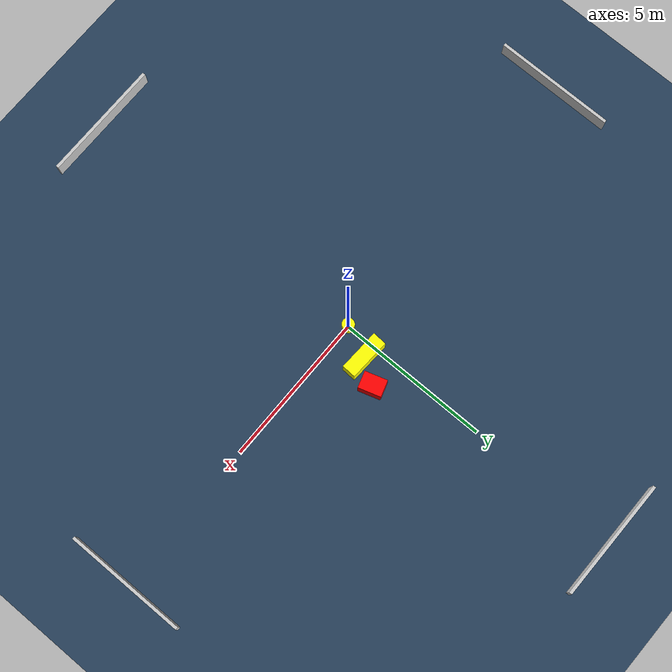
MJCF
<?xml version="1.0" ?>
<mujoco model="generated_environment">
  <option timestep="0.01" integrator="RK4" cone="elliptic"/>
  <default>
    <geom density="1"/>
  </default>
  <asset>
    <texture builtin="gradient" height="3072" name="skybox" rgb1="0.3 0.5 0.7" rgb2="0 0 0" type="skybox" width="512"/>
    <texture builtin="checker" height="300" name="groundplane" rgb1="0.2 0.3 0.4" rgb2="0.1 0.2 0.3" type="2d" width="300"/>
    <material name="groundplane" reflectance="0.2" texrepeat="5 5" texture="groundplane"/>
  </asset>
  <worldbody>
    <light dir="0 0 -1" directional="true" pos="0 0 1.5"/>
    <geom condim="3" friction="0.5 0.005 0.001" material="groundplane" name="floor" pos="0 0 0" size="0 0 0.05" type="plane"/>
    <body name="walls">
      <geom name="wall_1" condim="4" pos="-10.0 0.0 0.3" rgba="0.800000011920929 0.800000011920929 0.800000011920929 1.0" size="0.05 2.0 0.3" type="box"/>
      <geom name="wall_2" condim="4" pos="10.0 0.0 0.3" rgba="0.800000011920929 0.800000011920929 0.800000011920929 1.0" size="0.05 2.0 0.3" type="box"/>
      <geom name="wall_3" condim="4" pos="0.0 -10.0 0.3" rgba="0.800000011920929 0.800000011920929 0.800000011920929 1.0" size="2.0 0.05 0.3" type="box"/>
      <geom name="wall_4" condim="4" pos="0.0 10.0 0.3" rgba="0.800000011920929 0.800000011920929 0.800000011920929 1.0" size="2.0 0.05 0.3" type="box"/>
    </body>
    <body name="robot">
      <joint name="joint_x" type="slide" pos="0 0 0" axis="1 0 0"/>
      <joint name="joint_y" type="slide" pos="0 0 0" axis="0 1 0"/>
      <geom name="robot" type="cylinder" pos="0.0 0.0 0.2" size="0.2 0.2 0.0" mass="5.0" friction="1.0 0.005 0.0001" condim="4" rgba="1.0 1.0 0.0 1.0"/>
    </body>
    <body name="obstacle_1_movable">
      <geom name="obstacle_1_movable" condim="4" pos="0.4484963226374566 0.9940606049524859 0.3" euler="0 0 267.2668405412289" friction="0.0 0.005 0.001" rgba="1.0 1.0 0.0 1.0" size="0.23020700842917416 0.6850185536252308 0.3" type="box" mass="0.1"/>
      <joint type="free"/>
    </body>
    <body name="obstacle_2_static">
      <geom name="obstacle_2_static" condim="4" pos="0.9582654060651126 1.7499753594044722 0.3" euler="0 0 197.31261431751383" friction="0.0 0.005 0.001" rgba="1.0 0.0 0.0 1.0" size="0.27482949005598195 0.3711175379517533 0.3" type="box"/>
    </body>
  </worldbody>
  <actuator>
    <motor name="actuator_x" joint="joint_x" gear="1" ctrlrange="-1 1"/>
    <motor name="actuator_y" joint="joint_y" gear="1" ctrlrange="-1 1"/>
  </actuator>
</mujoco>
